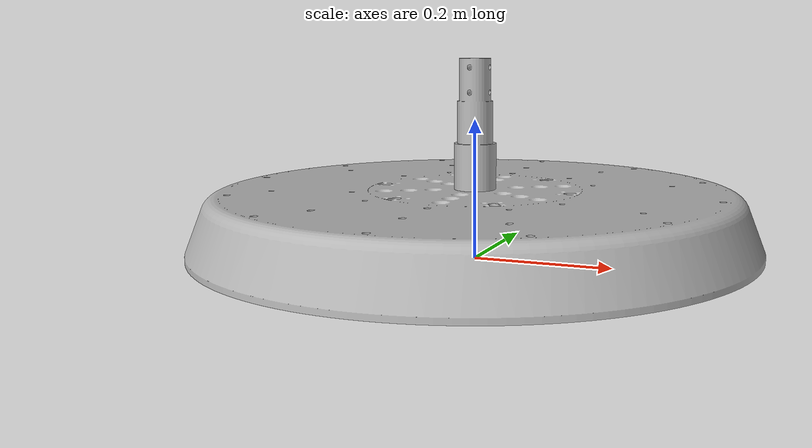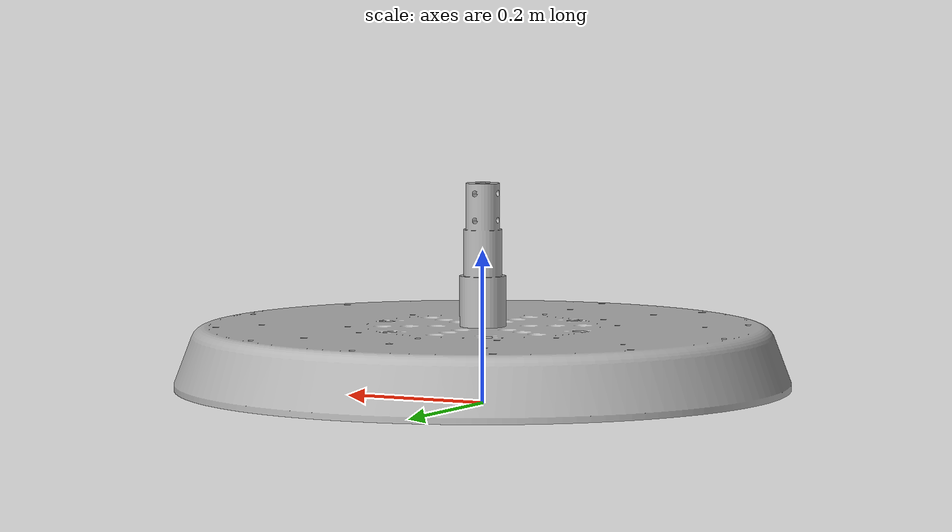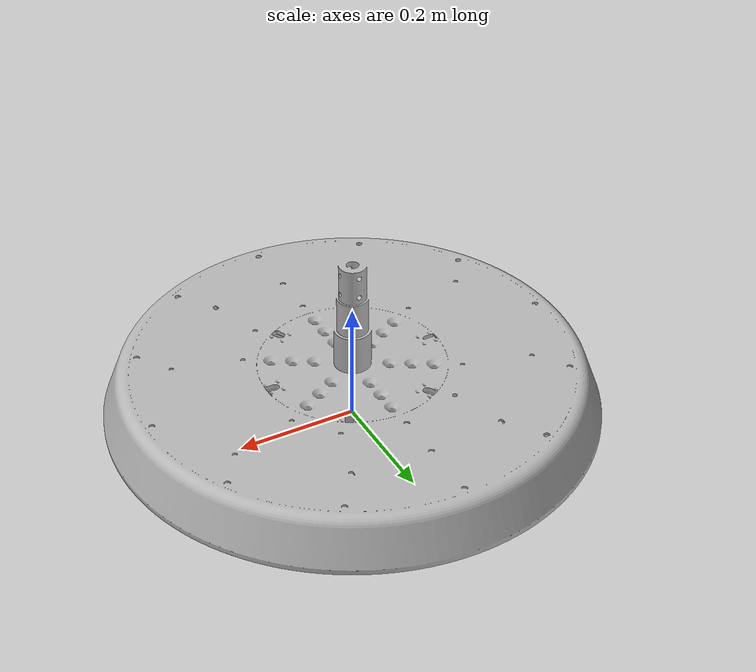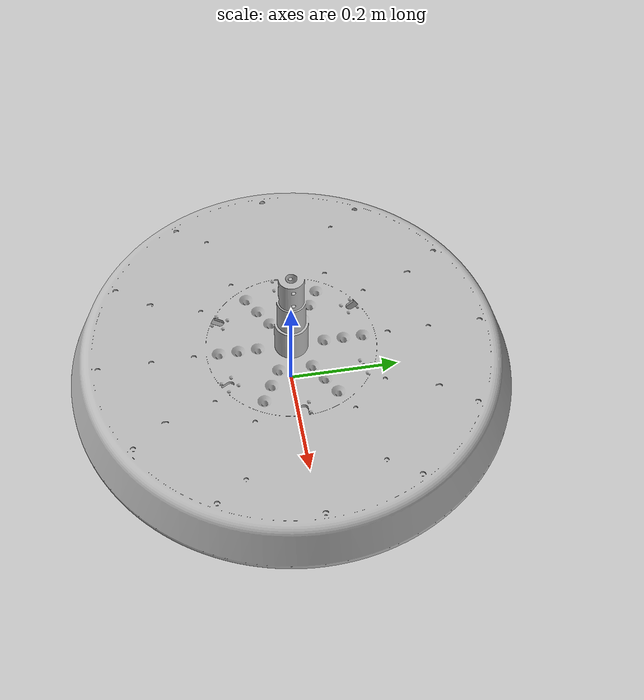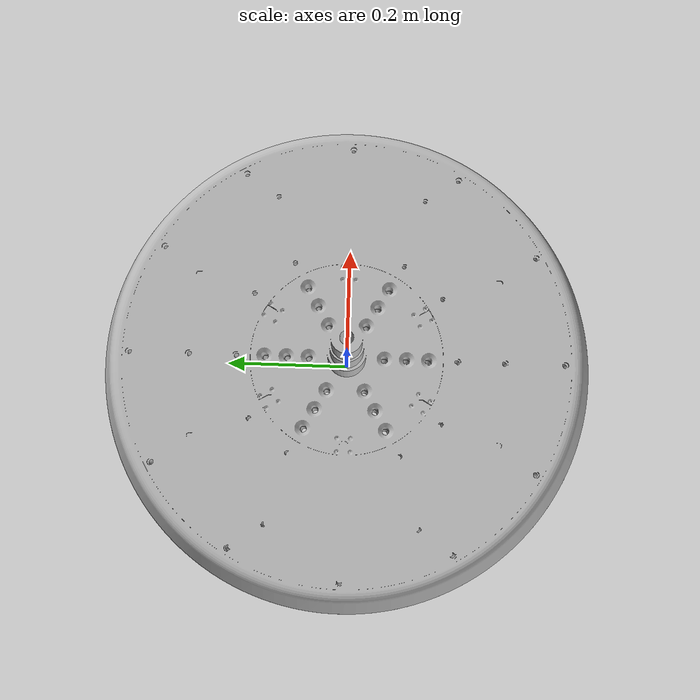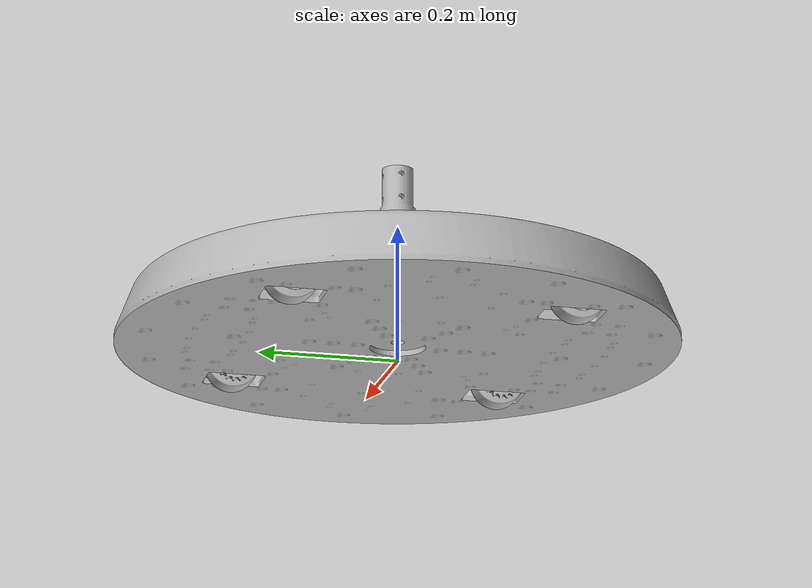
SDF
<?xml version='1.0'?>
<sdf version="1.6">
  <model name="drive_base">
    <link name="drive_base_link">
      <pose>0 0 0.020 1.5708 0 0</pose>
      <inertial>
        <mass>55.14</mass>
        <inertia>
          <ixx>2.325</ixx>
          <ixy>0</ixy>
          <ixz>-0.001</ixz>
          <iyy>4.503</iyy>
          <iyz>0</iyz>
          <izz>2.302</izz>
        </inertia>
      </inertial>
      <visual name="drive_base_visual">
        <geometry>
          <mesh>
            <uri>file://meshes/BSChassis.stl</uri>
            <scale>0.001 0.001 0.001</scale>
          </mesh>
        </geometry>
      </visual>
      <collision name="drive_base_collision">
        <geometry>
          <mesh>
            <uri>file://meshes/BSChassis.stl</uri>
            <scale>0.001 0.001 0.001</scale>
          </mesh>
        </geometry>
      </collision>
      <sensor name='chassis_imu' type='imu'>
      </sensor>
    </link>
    <include>
      <uri>model://bloodsport_wheel</uri>
      <pose>-0.21 0.20 0.045 0 3.1415 0</pose>
      <name>wheel_front_left</name>
    </include>
    <include>
      <uri>model://bloodsport_wheel</uri>
      <pose>0.21 0.20 0.045 0 0 0</pose>
      <name>wheel_front_right</name>
    </include>
    <include>
      <uri>model://bloodsport_wheel</uri>
      <pose>-0.21 -0.20 0.045 0 3.1415 0</pose>
      <name>wheel_back_left</name>
    </include>
    <include>
      <uri>model://bloodsport_wheel</uri>
      <pose>0.21 -0.20 0.045 0 0 0</pose>
      <name>wheel_back_right</name>
    </include>
    <joint name="wheel_front_left_joint" type="fixed">
      <parent>drive_base_link</parent>
      <child>wheel_front_left::wheel_link</child>
    </joint>
    <joint name="wheel_front_right_joint" type="fixed">
      <parent>drive_base_link</parent>
      <child>wheel_front_right::wheel_link</child>
    </joint>
    <joint name="wheel_back_left_joint" type="fixed">
      <parent>drive_base_link</parent>
      <child>wheel_back_left::wheel_link</child>
    </joint>
    <joint name="wheel_back_right_joint" type="fixed">
      <parent>drive_base_link</parent>
      <child>wheel_back_right::wheel_link</child>
    </joint>
  </model>
</sdf>

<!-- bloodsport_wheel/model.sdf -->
<sdf version="1.6">
  <model name="wheel">
    <pose>-0.073 -0.012 -0.085 0 0 0</pose>
    <link name="wheel_link">
      <inertial>
        <mass>0.411</mass>
        <inertia>
          <ixx>0.002018</ixx>
          <ixy>0</ixy>
          <ixz>0</ixz>
          <iyy>0.001811</iyy>
          <iyz>0</iyz>
          <izz>0.001811</izz>
        </inertia>
      </inertial>
      <visual name="wheel_visual">
        <geometry>
          <mesh>
            <uri>file://meshes/BSWheel.stl</uri>
            <scale>0.001 0.001 0.001</scale>
          </mesh>
        </geometry>
        <pose>-0.073 -0.012 -0.085 0 0 0</pose>
      </visual>

      <!-- "Fake" collision box -->
      <collision name="wheel_collision">
        <geometry>
          <cylinder>
            <radius>0.038</radius>
            <length>0.044</length>
          </cylinder>
        </geometry>
        <pose>0 0 0 1.57 0 0</pose>
      </collision>

      <!-- "True" collision box, however makes things VERY laggy.
           Use the optimized cylinder collision box above -->

    </link>
  </model>
</sdf>
